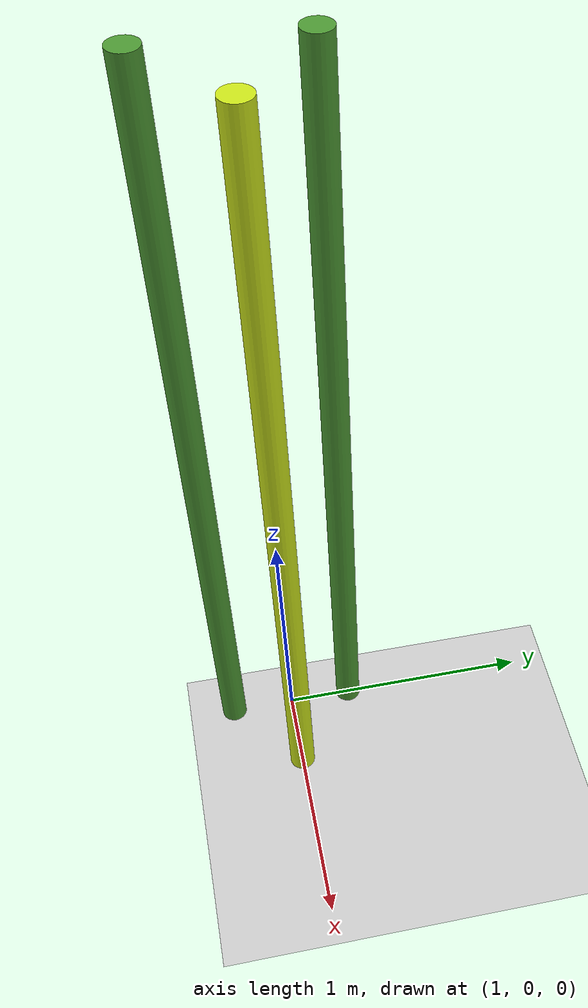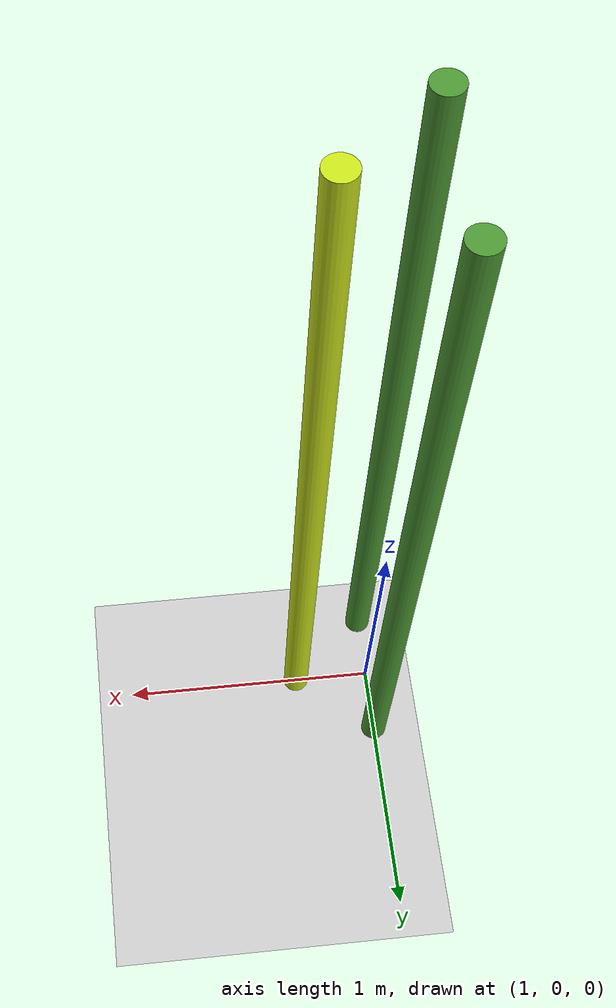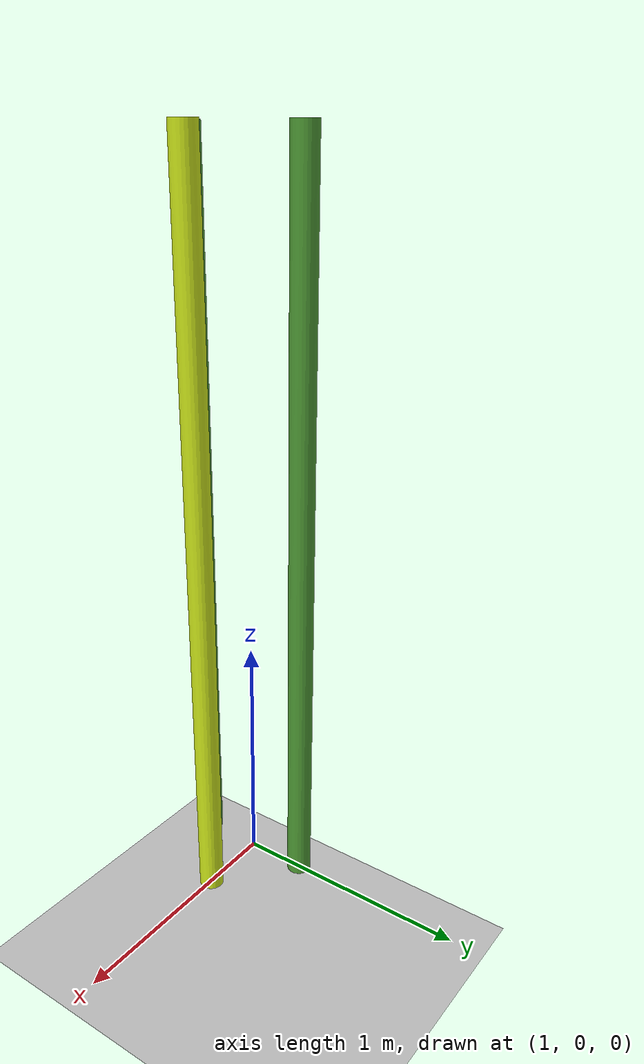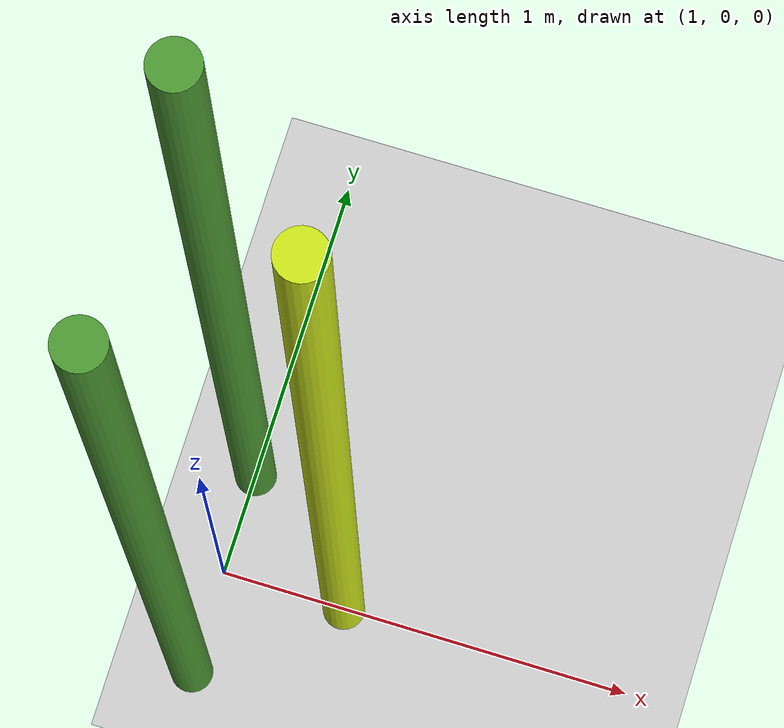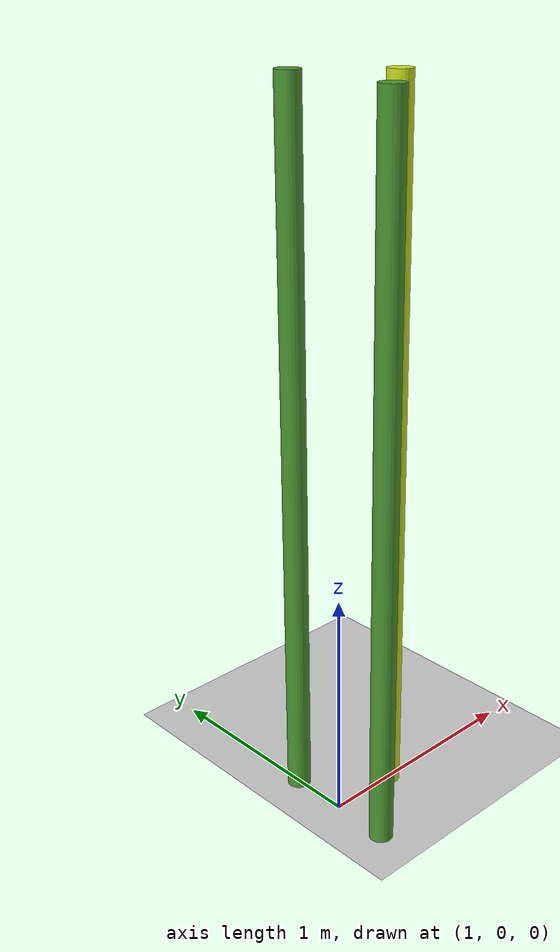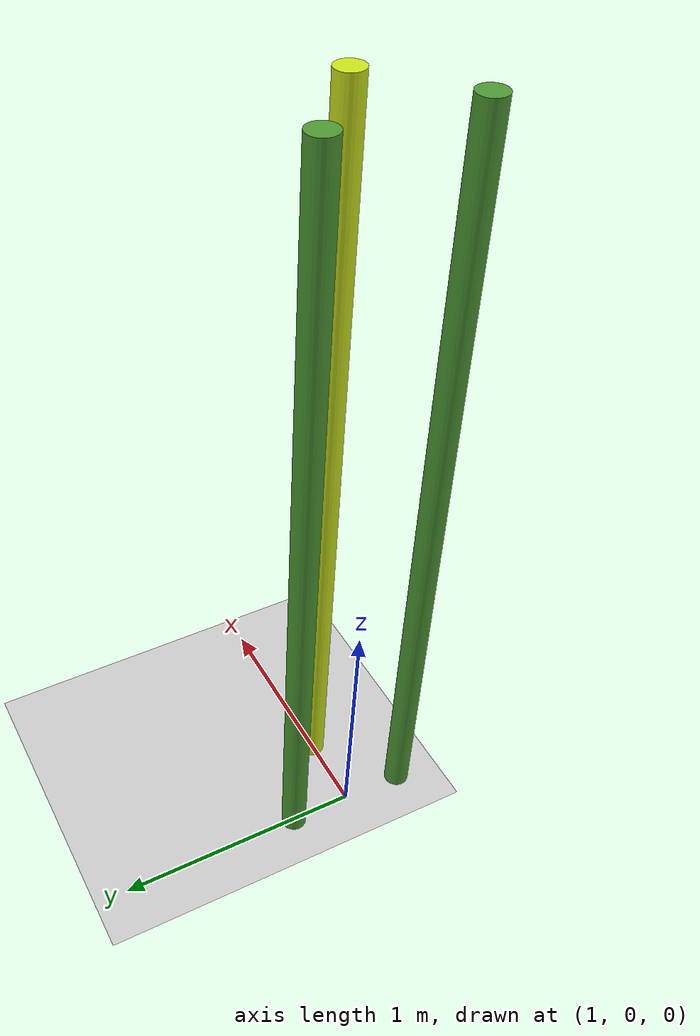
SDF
<?xml version="1.0" ?>
<sdf version="1.8">
  <world name="obstacles_world">

    <!--
      Physics engine settings.
      max_step_size: how much simulated time passes per physics step.
      real_time_factor: 1.0 = simulation runs at real time speed.
    -->
    <physics name="1ms" type="ignored">
      <max_step_size>0.001</max_step_size>
      <real_time_factor>1.0</real_time_factor>
      <real_time_update_rate>100</real_time_update_rate>
    </physics>

    <plugin filename="gz-sim-physics-system"
            name="gz::sim::systems::Physics"/>
    <plugin filename="gz-sim-user-commands-system"
            name="gz::sim::systems::UserCommands"/>
    <plugin filename="gz-sim-scene-broadcaster-system"
            name="gz::sim::systems::SceneBroadcaster"/>

    <!--
      Sunlight: directional light simulating the sun.
      Without this the scene renders completely black.
    -->
    <light type="directional" name="sun">
      <cast_shadows>true</cast_shadows>
      <pose>0 0 10 0 0 0</pose>
      <diffuse>0.8 0.8 0.8 1</diffuse>
      <specular>0.2 0.2 0.2 1</specular>
      <direction>-0.5 0.1 -0.9</direction>
    </light>

    <!--
      Ground plane: flat surface the robot sits on.
      static=true means infinite mass, won't move under forces.
    -->
    <model name="ground_plane">
      <static>true</static>
      <link name="link">
        <collision name="collision">
          <geometry>
            <plane>
              <normal>0 0 1</normal>
              <size>100 100</size>
            </plane>
          </geometry>
        </collision>
        <visual name="visual">
          <geometry>
            <plane>
              <normal>0 0 1</normal>
              <size>100 100</size>
            </plane>
          </geometry>
          <material>
            <ambient>0.8 0.8 0.8 1</ambient>
            <diffuse>0.8 0.8 0.8 1</diffuse>
          </material>
        </visual>
      </link>
    </model>

    <!-- C1: Right foreground obstacle culm -->
    <model name="culm_1">
      <static>true</static>
      <pose>1.0 0.25 1.5 0 0 0</pose>
      <link name="link">
        <collision name="collision">
          <geometry>
            <cylinder>
              <radius>0.05</radius>
              <length>3.0</length>
            </cylinder>
          </geometry>
        </collision>
        <visual name="visual">
          <geometry>
            <cylinder>
              <radius>0.05</radius>
              <length>3.0</length>
            </cylinder>
          </geometry>
          <material>
            <ambient>0.3 0.6 0.2 1</ambient>
            <diffuse>0.3 0.6 0.2 1</diffuse>
          </material>
        </visual>
      </link>
    </model>

    <!-- C2: Left foreground obstacle culm -->
    <model name="culm_2">
      <static>true</static>
      <pose>1.0 -0.25 1.5 0 0 0</pose>
      <link name="link">
        <collision name="collision">
          <geometry>
            <cylinder>
              <radius>0.05</radius>
              <length>3.0</length>
            </cylinder>
          </geometry>
        </collision>
        <visual name="visual">
          <geometry>
            <cylinder>
              <radius>0.05</radius>
              <length>3.0</length>
            </cylinder>
          </geometry>
          <material>
            <ambient>0.3 0.6 0.2 1</ambient>
            <diffuse>0.3 0.6 0.2 1</diffuse>
          </material>
        </visual>
      </link>
    </model>

    <!-- C3: Target culm — visual only, no collision -->
    <model name="culm_3_target">
      <static>true</static>
      <pose>1.3 0.0 1.5 0 0 0</pose>
      <link name="link">
        <visual name="visual">
          <geometry>
            <cylinder>
              <radius>0.05</radius>
              <length>3.0</length>
            </cylinder>
          </geometry>
          <material>
            <ambient>0.8 0.9 0.1 1</ambient>
            <diffuse>0.8 0.9 0.1 1</diffuse>
          </material>
        </visual>
      </link>
    </model>

    <!-- Harvest point marker: red sphere at cut height on C3 -->
    <model name="harvest_point">
      <static>true</static>
      <pose>1.3 0.0 0.35 0 0 0</pose>
      <link name="link">
        <visual name="visual">
          <geometry>
            <sphere>
              <radius>0.03</radius>
            </sphere>
          </geometry>
          <material>
            <ambient>1 0 0 1</ambient>
            <diffuse>1 0 0 1</diffuse>
          </material>
        </visual>
      </link>
    </model>

  </world>
</sdf>
